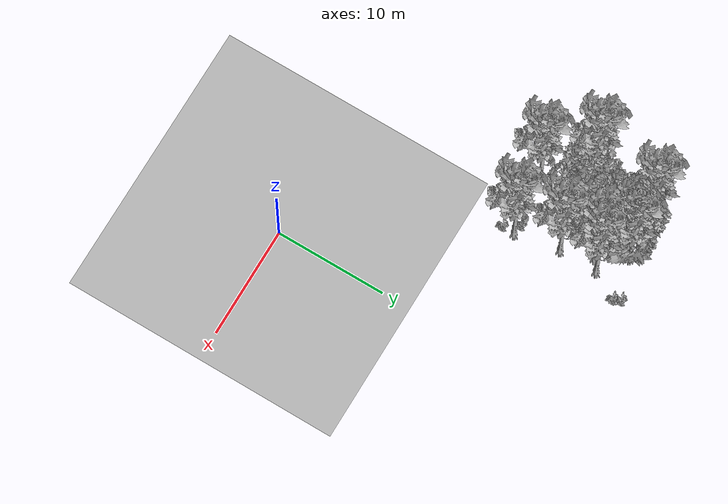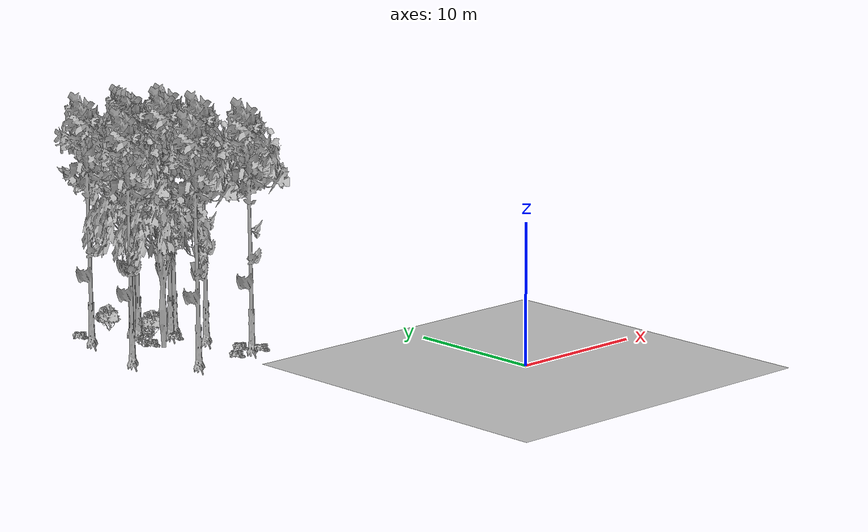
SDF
<sdf version="1.7">
 <world name="default">
  <model name="ground_plane">
   <static>1</static>
   <link name="link">
    <collision name="collision">
     <pose>-50 0 0 0 -0 0</pose>
     <geometry><plane><normal>0 0 1</normal><size>80 80</size></plane></geometry>
     <surface><contact><ode><min_depth>0.01</min_depth><max_vel>0</max_vel></ode></contact></surface>
    </collision>
    <visual name="grass">
     <cast_shadows>0</cast_shadows>
     <geometry>
      <mesh>
       <scale>0.46714285714285714 0.46714285714285714 0.1</scale>
       <uri>file://grass_plane/meshes/grass_plane.dae</uri>
      </mesh>
     </geometry>
    </visual>
   </link>
  </model>
  <model name="Tree 64">
   <static>1</static>
   <pose>-13.782898553972352 25.114180591537448 0 1.57079 -0 0</pose>
   <link name="link">
    <collision name="collision">
     <geometry><mesh><scale>3.5 5 3.5</scale><uri>model://tree_2/meshes/tree_2.obj</uri></mesh></geometry>
    </collision>
    <visual name="visual">
     <geometry><mesh><scale>3.5 5 3.5</scale><uri>model://tree_2/meshes/tree_2.obj</uri></mesh></geometry>
    </visual>
   </link>
  </model>
  <model name="Tree 91">
   <static>1</static>
   <pose>-10.694600335910422 24.1710294639434 0 1.57079 -0 0</pose>
   <link name="link">
    <collision name="collision">
     <geometry><mesh><scale>3.5 5 3.5</scale><uri>model://tree_9/meshes/tree_9.obj</uri></mesh></geometry>
    </collision>
    <visual name="visual">
     <geometry><mesh><scale>3.5 5 3.5</scale><uri>model://tree_9/meshes/tree_9.obj</uri></mesh></geometry>
    </visual>
   </link>
  </model>
  <model name="Tree 120">
   <static>1</static>
   <pose>-13.101512744790735 25.954548428872016 0 1.57079 -0 0</pose>
   <link name="link">
    <collision name="collision">
     <geometry><mesh><scale>3.5 5 3.5</scale><uri>model://tree_9/meshes/tree_9.obj</uri></mesh></geometry>
    </collision>
    <visual name="visual">
     <geometry><mesh><scale>3.5 5 3.5</scale><uri>model://tree_9/meshes/tree_9.obj</uri></mesh></geometry>
    </visual>
   </link>
  </model>
  <model name="Tree 334">
   <static>1</static>
   <pose>-16.828852478868907 25.810233469760362 0 1.57079 -0 0</pose>
   <link name="link">
    <collision name="collision">
     <geometry><mesh><scale>3.5 5 3.5</scale><uri>model://tree_9/meshes/tree_9.obj</uri></mesh></geometry>
    </collision>
    <visual name="visual">
     <geometry><mesh><scale>3.5 5 3.5</scale><uri>model://tree_9/meshes/tree_9.obj</uri></mesh></geometry>
    </visual>
   </link>
  </model>
  <model name="Tree 348">
   <static>1</static>
   <pose>-10.735057607337232 20.692534512084052 0 1.57079 -0 0</pose>
   <link name="link">
    <collision name="collision">
     <geometry><mesh><scale>3.5 5 3.5</scale><uri>model://tree_9/meshes/tree_9.obj</uri></mesh></geometry>
    </collision>
    <visual name="visual">
     <geometry><mesh><scale>3.5 5 3.5</scale><uri>model://tree_9/meshes/tree_9.obj</uri></mesh></geometry>
    </visual>
   </link>
  </model>
  <model name="Tree 469">
   <static>1</static>
   <pose>-10.011014355854652 16.693718620483544 0 1.57079 -0 0</pose>
   <link name="link">
    <collision name="collision">
     <geometry><mesh><scale>3.5 5 3.5</scale><uri>model://tree_9/meshes/tree_9.obj</uri></mesh></geometry>
    </collision>
    <visual name="visual">
     <geometry><mesh><scale>3.5 5 3.5</scale><uri>model://tree_9/meshes/tree_9.obj</uri></mesh></geometry>
    </visual>
   </link>
  </model>
  <model name="Tree 495">
   <static>1</static>
   <pose>-11.618271064636318 23.484693072029792 0 1.57079 -0 0</pose>
   <link name="link">
    <collision name="collision">
     <geometry><mesh><scale>3.5 5 3.5</scale><uri>model://tree_9/meshes/tree_9.obj</uri></mesh></geometry>
    </collision>
    <visual name="visual">
     <geometry><mesh><scale>3.5 5 3.5</scale><uri>model://tree_9/meshes/tree_9.obj</uri></mesh></geometry>
    </visual>
   </link>
  </model>
  <model name="Tree 508">
   <static>1</static>
   <pose>-13.485564631183252 25.149151554716497 0 1.57079 -0 0</pose>
   <link name="link">
    <collision name="collision">
     <geometry><mesh><scale>3.5 5 3.5</scale><uri>model://tree_9/meshes/tree_9.obj</uri></mesh></geometry>
    </collision>
    <visual name="visual">
     <geometry><mesh><scale>3.5 5 3.5</scale><uri>model://tree_9/meshes/tree_9.obj</uri></mesh></geometry>
    </visual>
   </link>
  </model>
  <model name="Tree 532">
   <static>1</static>
   <pose>-14.6995191594247 20.645924495706005 0 1.57079 -0 0</pose>
   <link name="link">
    <collision name="collision">
     <geometry><mesh><scale>3.5 5 3.5</scale><uri>model://tree_2/meshes/tree_2.obj</uri></mesh></geometry>
    </collision>
    <visual name="visual">
     <geometry><mesh><scale>3.5 5 3.5</scale><uri>model://tree_2/meshes/tree_2.obj</uri></mesh></geometry>
    </visual>
   </link>
  </model>
  <model name="Tree 537">
   <static>1</static>
   <pose>-15.336982664812329 16.074463664310073 0 1.57079 -0 0</pose>
   <link name="link">
    <collision name="collision">
     <geometry><mesh><scale>3.5 5 3.5</scale><uri>model://tree_9/meshes/tree_9.obj</uri></mesh></geometry>
    </collision>
    <visual name="visual">
     <geometry><mesh><scale>3.5 5 3.5</scale><uri>model://tree_9/meshes/tree_9.obj</uri></mesh></geometry>
    </visual>
   </link>
  </model>
  <model name="Tree 568">
   <static>1</static>
   <pose>-18.124945754107895 19.78030432042872 0 1.57079 -0 0</pose>
   <link name="link">
    <collision name="collision">
     <geometry><mesh><scale>3.5 5 3.5</scale><uri>model://tree_9/meshes/tree_9.obj</uri></mesh></geometry>
    </collision>
    <visual name="visual">
     <geometry><mesh><scale>3.5 5 3.5</scale><uri>model://tree_9/meshes/tree_9.obj</uri></mesh></geometry>
    </visual>
   </link>
  </model>
  <model name="Tree 604">
   <static>1</static>
   <pose>-13.405423121315287 24.861489876213312 0 1.57079 -0 0</pose>
   <link name="link">
    <collision name="collision">
     <geometry><mesh><scale>3.5 5 3.5</scale><uri>model://tree_9/meshes/tree_9.obj</uri></mesh></geometry>
    </collision>
    <visual name="visual">
     <geometry><mesh><scale>3.5 5 3.5</scale><uri>model://tree_9/meshes/tree_9.obj</uri></mesh></geometry>
    </visual>
   </link>
  </model>
  <model name="Bush 52">
   <static>1</static>
   <pose>-12.596255682798816 21.81543124195325 0 1.57079 -0 0</pose>
   <link name="link">
    <collision name="collision">
     <geometry><mesh><scale>2 2 2</scale><uri>model://bush_2/meshes/bush_2.obj</uri></mesh></geometry>
     <surface><contact><collide_without_contact>false</collide_without_contact></contact></surface>
    </collision>
    <visual name="visual">
     <geometry><mesh><scale>2 2 2</scale><uri>model://bush_2/meshes/bush_2.obj</uri></mesh></geometry>
    </visual>
   </link>
  </model>
  <model name="Bush 115">
   <static>1</static>
   <pose>-14.64692465421544 26.549565332045702 0 1.57079 -0 0</pose>
   <link name="link">
    <collision name="collision">
     <geometry><mesh><scale>2 2 2</scale><uri>model://bush_1/meshes/bush_1.obj</uri></mesh></geometry>
     <surface><contact><collide_without_contact>false</collide_without_contact></contact></surface>
    </collision>
    <visual name="visual">
     <geometry><mesh><scale>2 2 2</scale><uri>model://bush_1/meshes/bush_1.obj</uri></mesh></geometry>
    </visual>
   </link>
  </model>
  <model name="Bush 121">
   <static>1</static>
   <pose>-17.24765560811677 26.572205922891428 0 1.57079 -0 0</pose>
   <link name="link">
    <collision name="collision">
     <geometry><mesh><scale>2 2 2</scale><uri>model://bush_2/meshes/bush_2.obj</uri></mesh></geometry>
     <surface><contact><collide_without_contact>false</collide_without_contact></contact></surface>
    </collision>
    <visual name="visual">
     <geometry><mesh><scale>2 2 2</scale><uri>model://bush_2/meshes/bush_2.obj</uri></mesh></geometry>
    </visual>
   </link>
  </model>
  <model name="Bush 191">
   <static>1</static>
   <pose>-15.501408328056428 21.4542305706156 0 1.57079 -0 0</pose>
   <link name="link">
    <collision name="collision">
     <geometry><mesh><scale>2 2 2</scale><uri>model://bush_4/meshes/bush_4.obj</uri></mesh></geometry>
     <surface><contact><collide_without_contact>false</collide_without_contact></contact></surface>
    </collision>
    <visual name="visual">
     <geometry><mesh><scale>2 2 2</scale><uri>model://bush_4/meshes/bush_4.obj</uri></mesh></geometry>
    </visual>
   </link>
  </model>
  <model name="Bush 201">
   <static>1</static>
   <pose>-9.73032103150602 27.12655370076837 0 1.57079 -0 0</pose>
   <link name="link">
    <collision name="collision">
     <geometry><mesh><scale>2 2 2</scale><uri>model://bush_2/meshes/bush_2.obj</uri></mesh></geometry>
     <surface><contact><collide_without_contact>false</collide_without_contact></contact></surface>
    </collision>
    <visual name="visual">
     <geometry><mesh><scale>2 2 2</scale><uri>model://bush_2/meshes/bush_2.obj</uri></mesh></geometry>
    </visual>
   </link>
  </model>
  <model name="Bush 242">
   <static>1</static>
   <pose>-13.330701468240694 23.33783564778318 0 1.57079 -0 0</pose>
   <link name="link">
    <collision name="collision">
     <geometry><mesh><scale>2 2 2</scale><uri>model://bush_1/meshes/bush_1.obj</uri></mesh></geometry>
     <surface><contact><collide_without_contact>false</collide_without_contact></contact></surface>
    </collision>
    <visual name="visual">
     <geometry><mesh><scale>2 2 2</scale><uri>model://bush_1/meshes/bush_1.obj</uri></mesh></geometry>
    </visual>
   </link>
  </model>
  <model name="Bush 251">
   <static>1</static>
   <pose>-14.946840130032122 21.54444517723853 0 1.57079 -0 0</pose>
   <link name="link">
    <collision name="collision">
     <geometry><mesh><scale>2 2 2</scale><uri>model://bush_2/meshes/bush_2.obj</uri></mesh></geometry>
     <surface><contact><collide_without_contact>false</collide_without_contact></contact></surface>
    </collision>
    <visual name="visual">
     <geometry><mesh><scale>2 2 2</scale><uri>model://bush_2/meshes/bush_2.obj</uri></mesh></geometry>
    </visual>
   </link>
  </model>
  <model name="Bush 369">
   <static>1</static>
   <pose>-10.184882889341608 15.478229668134205 0 1.57079 -0 0</pose>
   <link name="link">
    <collision name="collision">
     <geometry><mesh><scale>2 2 2</scale><uri>model://bush_2/meshes/bush_2.obj</uri></mesh></geometry>
     <surface><contact><collide_without_contact>false</collide_without_contact></contact></surface>
    </collision>
    <visual name="visual">
     <geometry><mesh><scale>2 2 2</scale><uri>model://bush_2/meshes/bush_2.obj</uri></mesh></geometry>
    </visual>
   </link>
  </model>
  <model name="Bush 518">
   <static>1</static>
   <pose>-9.452088764119754 26.486555825379938 0 1.57079 -0 0</pose>
   <link name="link">
    <collision name="collision">
     <geometry><mesh><scale>2 2 2</scale><uri>model://bush_2/meshes/bush_2.obj</uri></mesh></geometry>
     <surface><contact><collide_without_contact>false</collide_without_contact></contact></surface>
    </collision>
    <visual name="visual">
     <geometry><mesh><scale>2 2 2</scale><uri>model://bush_2/meshes/bush_2.obj</uri></mesh></geometry>
    </visual>
   </link>
  </model>
  <model name="Bush 594">
   <static>1</static>
   <pose>-12.502855096092564 15.395866122506298 0 1.57079 -0 0</pose>
   <link name="link">
    <collision name="collision">
     <geometry><mesh><scale>2 2 2</scale><uri>model://bush_2/meshes/bush_2.obj</uri></mesh></geometry>
     <surface><contact><collide_without_contact>false</collide_without_contact></contact></surface>
    </collision>
    <visual name="visual">
     <geometry><mesh><scale>2 2 2</scale><uri>model://bush_2/meshes/bush_2.obj</uri></mesh></geometry>
    </visual>
   </link>
  </model>
  <model name="Bush 625">
   <static>1</static>
   <pose>-11.01494288698607 16.762132340633265 0 1.57079 -0 0</pose>
   <link name="link">
    <collision name="collision">
     <geometry><mesh><scale>2 2 2</scale><uri>model://bush_2/meshes/bush_2.obj</uri></mesh></geometry>
     <surface><contact><collide_without_contact>false</collide_without_contact></contact></surface>
    </collision>
    <visual name="visual">
     <geometry><mesh><scale>2 2 2</scale><uri>model://bush_2/meshes/bush_2.obj</uri></mesh></geometry>
    </visual>
   </link>
  </model>
 </world>
</sdf>
